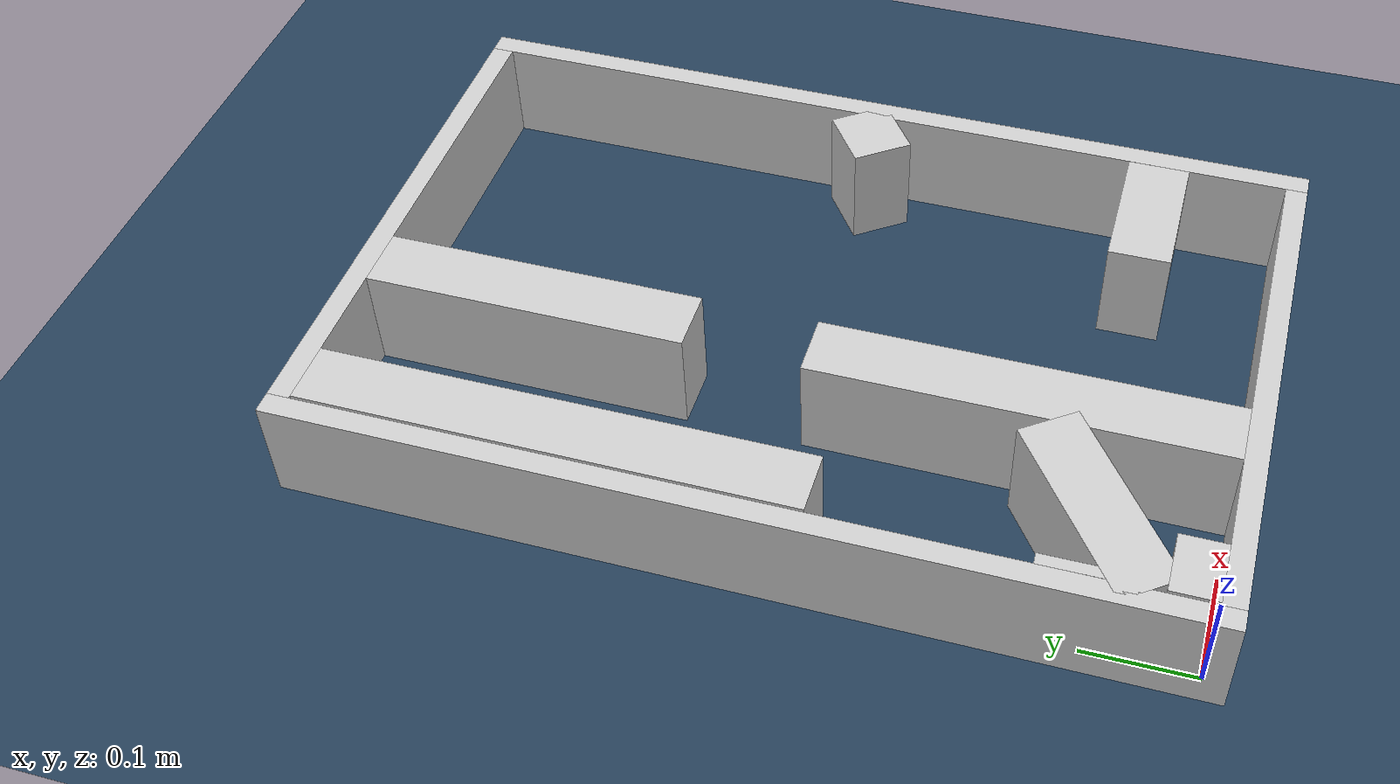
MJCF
<?xml version="1.0" ?>
<mujoco model="generated_real_template">
  <compiler angle="degree"/>
  <option timestep="0.002" integrator="implicitfast" iterations="100" cone="elliptic"/>
  <default>
    <geom density="1"/>
  </default>
  <asset>
    <texture builtin="gradient" height="3072" rgb1="0.3 0.5 0.7" rgb2="0 0 0" type="skybox" width="512"/>
    <texture builtin="checker" height="300" mark="edge" markrgb="0.8 0.8 0.8" name="groundplane" rgb1="0.2 0.3 0.4" rgb2="0.1 0.2 0.3" type="2d" width="300"/>
    <material name="groundplane" reflectance="0.2" texrepeat="5 5" texture="groundplane" texuniform="true"/>
  </asset>
  <worldbody>
    <light dir="0 0 -1" directional="true" pos="0 0 1.5"/>
    <geom name="floor" type="plane" condim="4" friction="0.5 0.005 0.001" material="groundplane" size="0 0 0.05"/>
    <body name="walls">
      <geom name="wall_boundary_left" type="box" condim="4" friction="1.0 0.005 0.0001" rgba="0.8 0.8 0.8 1" pos="-0.010000 0.387500 0.050000" euler="0 0 0.000000" size="0.010000 0.407500 0.050000"/>
      <geom name="wall_boundary_right" type="box" condim="4" friction="1.0 0.005 0.0001" rgba="0.8 0.8 0.8 1" pos="0.500000 0.387500 0.050000" euler="0 0 0.000000" size="0.010000 0.407500 0.050000"/>
      <geom name="wall_boundary_bottom" type="box" condim="4" friction="1.0 0.005 0.0001" rgba="0.8 0.8 0.8 1" pos="0.245000 -0.010000 0.050000" euler="0 0 0.000000" size="0.245000 0.010000 0.050000"/>
      <geom name="wall_boundary_top" type="box" condim="4" friction="1.0 0.005 0.0001" rgba="0.8 0.8 0.8 1" pos="0.245000 0.785000 0.050000" euler="0 0 0.000000" size="0.245000 0.010000 0.050000"/>
      <geom name="wall_inner_1_1" type="box" condim="4" friction="1.0 0.005 0.0001" rgba="0.8 0.8 0.8 1" pos="0.176965 0.186732 0.050000" euler="0 0 90.000000" size="0.186732 0.028500 0.050000"/>
      <geom name="wall_inner_1_2" type="box" condim="4" friction="1.0 0.005 0.0001" rgba="0.8 0.8 0.8 1" pos="0.176965 0.627222 0.050000" euler="0 0 90.000000" size="0.147778 0.028500 0.050000"/>
      <geom name="wall_inner_2_1" type="box" condim="4" friction="1.0 0.005 0.0001" rgba="0.8 0.8 0.8 1" pos="0.030904 0.020674 0.050000" euler="0 0 90.000000" size="0.020674 0.028500 0.050000"/>
      <geom name="wall_inner_2_2" type="box" condim="4" friction="1.0 0.005 0.0001" rgba="0.8 0.8 0.8 1" pos="0.030904 0.551748 0.050000" euler="0 0 90.000000" size="0.223252 0.028500 0.050000"/>
      <geom name="wall_inner_3_1" type="box" condim="4" friction="1.0 0.005 0.0001" rgba="0.8 0.8 0.8 1" pos="0.073568 0.106601 0.050000" euler="0 0 36.227148" size="0.091198 0.028500 0.050000"/>
      <geom name="wall_inner_3_2" type="box" condim="4" friction="1.0 0.005 0.0001" rgba="0.8 0.8 0.8 1" pos="0.465251 0.393555 0.050000" euler="0 0 36.227148" size="0.030680 0.028500 0.050000"/>
      <geom name="wall_inner_4_1" type="box" condim="4" friction="1.0 0.005 0.0001" rgba="0.8 0.8 0.8 1" pos="0.425737 0.118044 0.050000" euler="0 0 -179.708160" size="0.064264 0.028500 0.050000"/>
      <geom name="wall_inner_4_2" type="box" condim="4" friction="1.0 0.005 0.0001" rgba="0.8 0.8 0.8 1" pos="0.005372 0.115903 0.050000" euler="0 0 -179.708160" size="0.005372 0.028500 0.050000"/>
    </body>
  </worldbody>
</mujoco>
